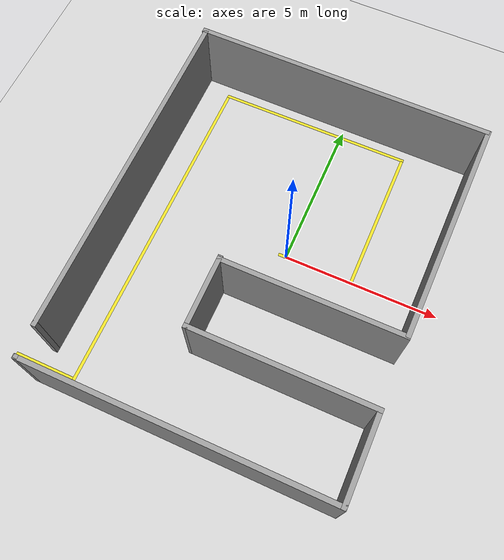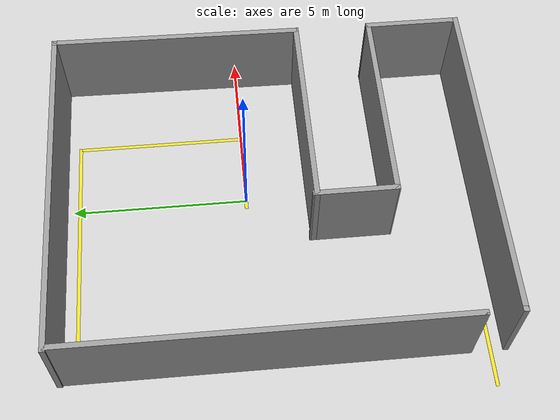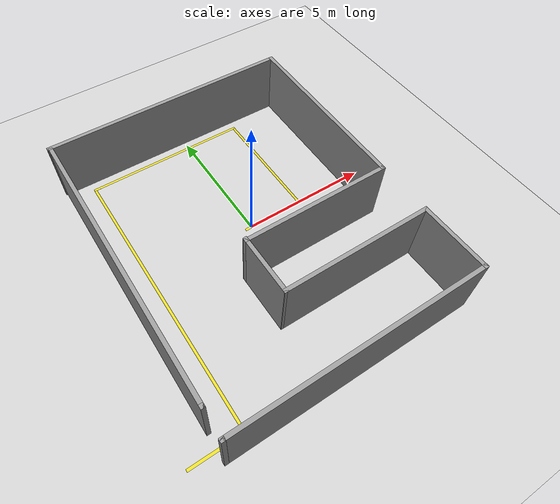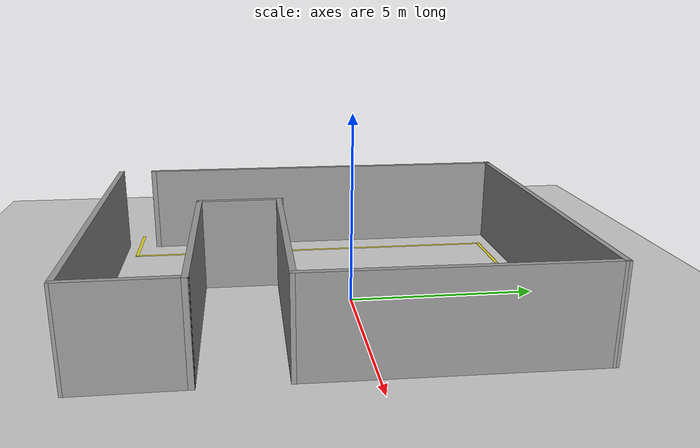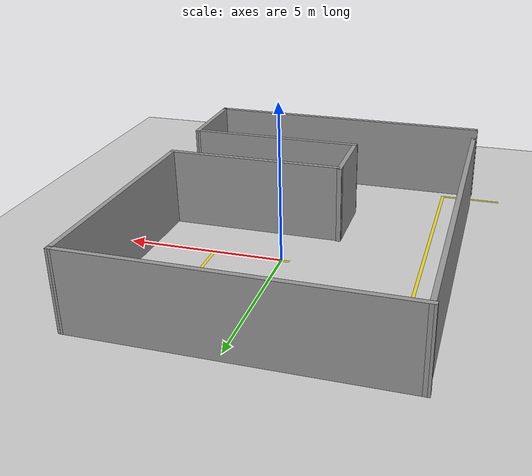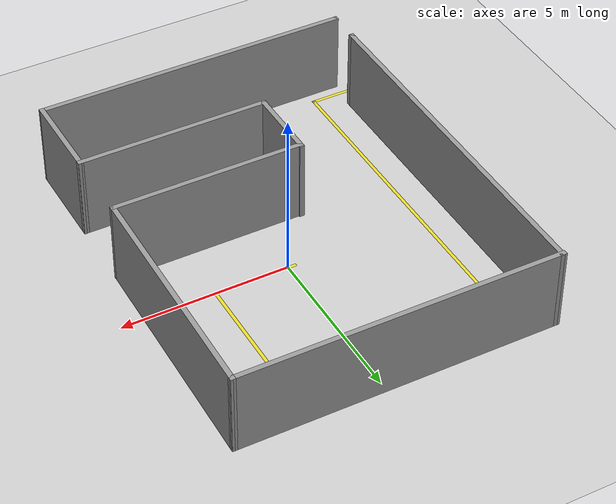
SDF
<sdf version="1.7">
 <world name="default">
  <model name="ground_plane">
   <static>1</static>
   <link name="link">
    <collision name="collision">
     <geometry><plane><normal>0 0 1</normal><size>100 100</size></plane></geometry>
     <surface><friction><ode><mu>100</mu><mu2>50</mu2></ode></friction></surface>
    </collision>
    <visual name="visual">
     <cast_shadows>0</cast_shadows>
     <geometry><plane><normal>0 0 1</normal><size>100 100</size></plane></geometry>
     <material>
      <script><uri>file://media/materials/scripts/gazebo.material</uri><name>Gazebo/Grey</name></script>
     </material>
    </visual>
   </link>
  </model>
  <light name="sun" type="directional">
   <pose>0 0 10 0 -0 0</pose>
   <diffuse>0.8 0.8 0.8 1</diffuse>
   <specular>0.2 0.2 0.2 1</specular>
   <attenuation>
    <range>1000</range>
    <constant>0.9</constant>
    <linear>0.01</linear>
    <quadratic>0.001</quadratic>
   </attenuation>
   <direction>-0.5 0.1 -0.9</direction>
   <spot><inner_angle>0</inner_angle><outer_angle>0</outer_angle><falloff>0</falloff></spot>
  </light>
  <model name="yellow line_1">
   <static>1</static>
   <link name="link_ground">
    <collision name="collision">
     <geometry><plane><normal>0 0 1</normal><size>0.1 6.5</size></plane></geometry>
     <surface><friction><ode><mu>100</mu><mu2>50</mu2></ode></friction></surface>
    </collision>
    <visual name="visual_ground">
     <cast_shadows>0</cast_shadows>
     <geometry><plane><normal>0 0 1</normal><size>0.1 6.5</size></plane></geometry>
     <material>
      <script><uri>file://media/materials/scripts/gazebo.material</uri><name>Gazebo/Yellow</name></script>
     </material>
    </visual>
   </link>
   <pose>-1 4.83 0 0 -0 1.57</pose>
  </model>
  <model name="yellow line_2">
   <static>1</static>
   <link name="link_ground">
    <collision name="collision">
     <geometry><plane><normal>0 0 1</normal><size>0.1 11</size></plane></geometry>
     <surface><friction><ode><mu>100</mu><mu2>50</mu2></ode></friction></surface>
    </collision>
    <visual name="visual_ground">
     <cast_shadows>0</cast_shadows>
     <geometry><plane><normal>0 0 1</normal><size>0.1 11</size></plane></geometry>
     <material>
      <script><uri>file://media/materials/scripts/gazebo.material</uri><name>Gazebo/Yellow</name></script>
     </material>
    </visual>
   </link>
   <pose>-4.2 -0.71 0 0 -0 0</pose>
  </model>
  <model name="yellow line_3">
   <static>1</static>
   <link name="link_ground">
    <collision name="collision">
     <geometry><plane><normal>0 0 1</normal><size>0.1 2</size></plane></geometry>
     <surface><friction><ode><mu>100</mu><mu2>50</mu2></ode></friction></surface>
    </collision>
    <visual name="visual_ground">
     <cast_shadows>0</cast_shadows>
     <geometry><plane><normal>0 0 1</normal><size>0.1 2</size></plane></geometry>
     <material>
      <script><uri>file://media/materials/scripts/gazebo.material</uri><name>Gazebo/Yellow</name></script>
     </material>
    </visual>
   </link>
   <pose>-5.17 -6.16 0 0 -0 1.57</pose>
  </model>
  <model name="yellow line_5">
   <static>1</static>
   <link name="link_ground">
    <collision name="collision">
     <geometry><plane><normal>0 0 1</normal><size>0.1 4.8</size></plane></geometry>
     <surface><friction><ode><mu>100</mu><mu2>50</mu2></ode></friction></surface>
    </collision>
    <visual name="visual_ground">
     <cast_shadows>0</cast_shadows>
     <geometry><plane><normal>0 0 1</normal><size>0.1 4.8</size></plane></geometry>
     <material>
      <script><uri>file://media/materials/scripts/gazebo.material</uri><name>Gazebo/Yellow</name></script>
     </material>
    </visual>
   </link>
   <pose>2.19978 2.39516 0 0 -0 0</pose>
  </model>
  <model name="yellow line_6">
   <static>1</static>
   <link name="link_ground">
    <collision name="collision">
     <geometry><plane><normal>0 0 1</normal><size>0.1 2.5</size></plane></geometry>
     <surface><friction><ode><mu>100</mu><mu2>50</mu2></ode></friction></surface>
    </collision>
    <visual name="visual_ground">
     <cast_shadows>0</cast_shadows>
     <geometry><plane><normal>0 0 1</normal><size>0.1 2.5</size></plane></geometry>
     <material>
      <script><uri>file://media/materials/scripts/gazebo.material</uri><name>Gazebo/Yellow</name></script>
     </material>
    </visual>
   </link>
   <pose>1 0 0 0 -0 1.57</pose>
  </model>
  <model name="rooms_2">
   <pose>-0.41132 -0.6443 0 0 -0 0</pose>
   <link name="Wall_1">
    <collision name="Wall_1_Collision">
     <geometry><box><size>0.15 0.15 2.5</size></box></geometry>
     <pose>0 0 1.25 0 -0 0</pose>
    </collision>
    <visual name="Wall_1_Visual">
     <pose>0 0 1.25 0 -0 0</pose>
     <geometry><box><size>0.15 0.15 2.5</size></box></geometry>
     <material>
      <script><uri>file://media/materials/scripts/gazebo.material</uri><name>Gazebo/Grey</name></script>
      <ambient>1 1 1 1</ambient>
     </material>
    </visual>
    <pose>4.75175 5.87683 0 0 -0 0</pose>
   </link>
   <link name="Wall_10">
    <collision name="Wall_10_Collision">
     <geometry><box><size>0.15 0.15 2.5</size></box></geometry>
     <pose>0 0 1.25 0 -0 0</pose>
    </collision>
    <visual name="Wall_10_Visual">
     <pose>0 0 1.25 0 -0 0</pose>
     <geometry><box><size>0.15 0.15 2.5</size></box></geometry>
     <material>
      <script><uri>file://media/materials/scripts/gazebo.material</uri><name>Gazebo/Grey</name></script>
      <ambient>1 1 1 1</ambient>
     </material>
    </visual>
    <pose>-4.71225 5.92282 0 0 -0 0</pose>
   </link>
   <link name="Wall_12">
    <collision name="Wall_12_Collision">
     <geometry><box><size>9.61411 0.15 2.5</size></box></geometry>
     <pose>0 0 1.25 0 -0 0</pose>
    </collision>
    <visual name="Wall_12_Visual">
     <pose>0 0 1.25 0 -0 0</pose>
     <geometry><box><size>9.61411 0.15 2.5</size></box></geometry>
     <material>
      <script><uri>file://media/materials/scripts/gazebo.material</uri><name>Gazebo/Grey</name></script>
      <ambient>1 1 1 1</ambient>
     </material>
    </visual>
    <pose>-0.020481 5.89982 0 0 0 -0.00486</pose>
   </link>
   <link name="Wall_13">
    <collision name="Wall_13_Collision">
     <geometry><box><size>0.15 0.15 2.5</size></box></geometry>
     <pose>0 0 1.25 0 -0 0</pose>
    </collision>
    <visual name="Wall_13_Visual">
     <pose>0 0 1.25 0 -0 0</pose>
     <geometry><box><size>0.15 0.15 2.5</size></box></geometry>
     <material>
      <script><uri>file://media/materials/scripts/gazebo.material</uri><name>Gazebo/Grey</name></script>
      <ambient>1 1 1 1</ambient>
     </material>
    </visual>
    <pose>4.75175 5.87683 0 0 -0 0</pose>
   </link>
   <link name="Wall_15">
    <collision name="Wall_15_Collision">
     <geometry><box><size>5.75 0.15 2.5</size></box></geometry>
     <pose>0 0 1.25 0 -0 0</pose>
    </collision>
    <visual name="Wall_15_Visual">
     <pose>0 0 1.25 0 -0 0</pose>
     <geometry><box><size>5.75 0.15 2.5</size></box></geometry>
     <material>
      <script><uri>file://media/materials/scripts/gazebo.material</uri><name>Gazebo/Grey</name></script>
      <ambient>1 1 1 1</ambient>
     </material>
    </visual>
    <pose>1.84829 -1.17727 0 0 -0 3.14159</pose>
   </link>
   <link name="Wall_16">
    <collision name="Wall_16_Collision">
     <geometry><box><size>2.33649 0.15 2.5</size></box></geometry>
     <pose>0 0 1.25 0 -0 0</pose>
    </collision>
    <visual name="Wall_16_Visual">
     <pose>0 0 1.25 0 -0 0</pose>
     <geometry><box><size>2.33649 0.15 2.5</size></box></geometry>
     <material>
      <script><uri>file://media/materials/scripts/gazebo.material</uri><name>Gazebo/Grey</name></script>
      <ambient>1 1 1 1</ambient>
     </material>
    </visual>
    <pose>-0.951466 -2.23029 0 0 0 -1.57058</pose>
   </link>
   <link name="Wall_17">
    <collision name="Wall_17_Collision">
     <geometry><box><size>5.75 0.15 2.5</size></box></geometry>
     <pose>0 0 1.25 0 -0 0</pose>
    </collision>
    <visual name="Wall_17_Visual">
     <pose>0 0 1.25 0 -0 0</pose>
     <geometry><box><size>5.75 0.15 2.5</size></box></geometry>
     <material>
      <script><uri>file://media/materials/scripts/gazebo.material</uri><name>Gazebo/Grey</name></script>
      <ambient>1 1 1 1</ambient>
     </material>
    </visual>
    <pose>1.84878 -3.32353 0 0 -0 0</pose>
   </link>
   <link name="Wall_18">
    <collision name="Wall_18_Collision">
     <geometry><box><size>2.74964 0.15 2.5</size></box></geometry>
     <pose>0 0 1.25 0 -0 0</pose>
    </collision>
    <visual name="Wall_18_Visual">
     <pose>0 0 1.25 0 -0 0</pose>
     <geometry><box><size>2.74964 0.15 2.5</size></box></geometry>
     <material>
      <script><uri>file://media/materials/scripts/gazebo.material</uri><name>Gazebo/Grey</name></script>
      <ambient>1 1 1 1</ambient>
     </material>
    </visual>
    <pose>4.64853 -4.62335 0 0 0 -1.57098</pose>
   </link>
   <link name="Wall_19">
    <collision name="Wall_19_Collision">
     <geometry><box><size>9.5 0.15 2.5</size></box></geometry>
     <pose>0 0 1.25 0 -0 0</pose>
    </collision>
    <visual name="Wall_19_Visual">
     <pose>0 0 1.25 0 -0 0</pose>
     <geometry><box><size>9.5 0.15 2.5</size></box></geometry>
     <material>
      <script><uri>file://media/materials/scripts/gazebo.material</uri><name>Gazebo/Grey</name></script>
      <ambient>1 1 1 1</ambient>
     </material>
    </visual>
    <pose>-0.026708 -5.92317 0 0 -0 3.14159</pose>
   </link>
   <link name="Wall_20">
    <collision name="Wall_20_Collision">
     <geometry><box><size>0.15 0.15 2.5</size></box></geometry>
     <pose>0 0 1.25 0 -0 0</pose>
    </collision>
    <visual name="Wall_20_Visual">
     <pose>0 0 1.25 0 -0 0</pose>
     <geometry><box><size>0.15 0.15 2.5</size></box></geometry>
     <material>
      <script><uri>file://media/materials/scripts/gazebo.material</uri><name>Gazebo/Grey</name></script>
      <ambient>1 1 1 1</ambient>
     </material>
    </visual>
    <pose>-4.70171 -5.92317 0 0 -0 0</pose>
   </link>
   <link name="Wall_22">
    <collision name="Wall_22_Collision">
     <geometry><box><size>11 0.15 2.5</size></box></geometry>
     <pose>0 0 1.25 0 -0 0</pose>
    </collision>
    <visual name="Wall_22_Visual">
     <pose>0 0 1.25 0 -0 0</pose>
     <geometry><box><size>11 0.15 2.5</size></box></geometry>
     <material>
      <script><uri>file://media/materials/scripts/gazebo.material</uri><name>Gazebo/Grey</name></script>
      <ambient>1 1 1 1</ambient>
     </material>
    </visual>
    <pose>-4.71225 0.497825 0 0 0 -1.5708</pose>
   </link>
   <link name="Wall_23">
    <collision name="Wall_23_Collision">
     <geometry><box><size>0.15 0.15 2.5</size></box></geometry>
     <pose>0 0 1.25 0 -0 0</pose>
    </collision>
    <visual name="Wall_23_Visual">
     <pose>0 0 1.25 0 -0 0</pose>
     <geometry><box><size>0.15 0.15 2.5</size></box></geometry>
     <material>
      <script><uri>file://media/materials/scripts/gazebo.material</uri><name>Gazebo/Grey</name></script>
      <ambient>1 1 1 1</ambient>
     </material>
    </visual>
    <pose>-4.71225 -4.92718 0 0 -0 0</pose>
   </link>
   <link name="Wall_3">
    <collision name="Wall_3_Collision">
     <geometry><box><size>7.16463 0.15 2.5</size></box></geometry>
     <pose>0 0 1.25 0 -0 0</pose>
    </collision>
    <visual name="Wall_3_Visual">
     <pose>0 0 1.25 0 -0 0</pose>
     <geometry><box><size>7.16463 0.15 2.5</size></box></geometry>
     <material>
      <script><uri>file://media/materials/scripts/gazebo.material</uri><name>Gazebo/Grey</name></script>
      <ambient>1 1 1 1</ambient>
     </material>
    </visual>
    <pose>4.70002 2.36989 0 0 0 -1.58554</pose>
   </link>
   <static>1</static>
  </model>
  <gravity>0 0 -9.8</gravity>
  <magnetic_field>6e-06 2.3e-05 -4.2e-05</magnetic_field>
  <atmosphere type="adiabatic"/>
  <physics type="ode">
   <max_step_size>0.001</max_step_size>
   <real_time_factor>1</real_time_factor>
   <real_time_update_rate>1000</real_time_update_rate>
  </physics>
  <scene><ambient>0.4 0.4 0.4 1</ambient><background>0.7 0.7 0.7 1</background><shadows>1</shadows></scene>
  <spherical_coordinates>
   <surface_model>EARTH_WGS84</surface_model>
   <latitude_deg>0</latitude_deg>
   <longitude_deg>0</longitude_deg>
   <elevation>0</elevation>
   <heading_deg>0</heading_deg>
  </spherical_coordinates>
 </world>
</sdf>
